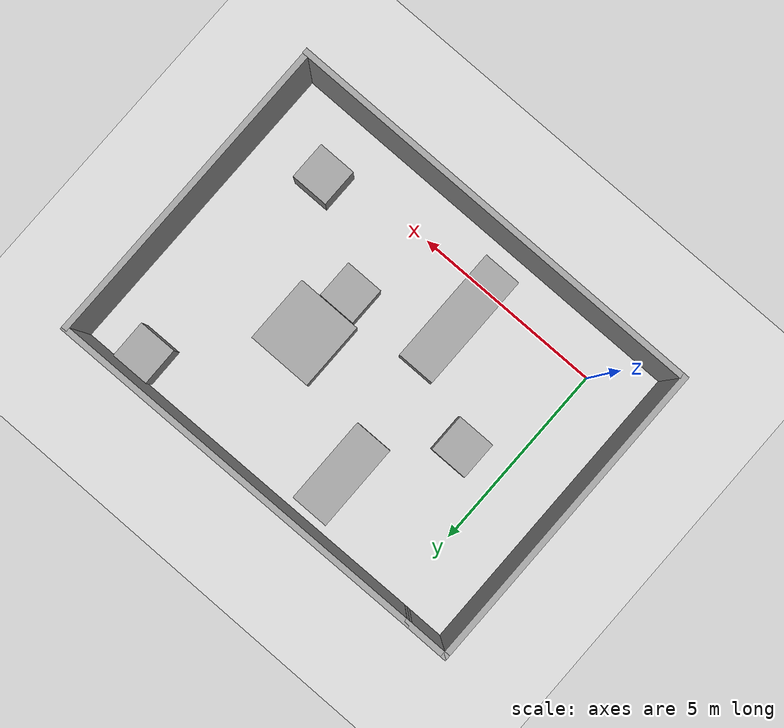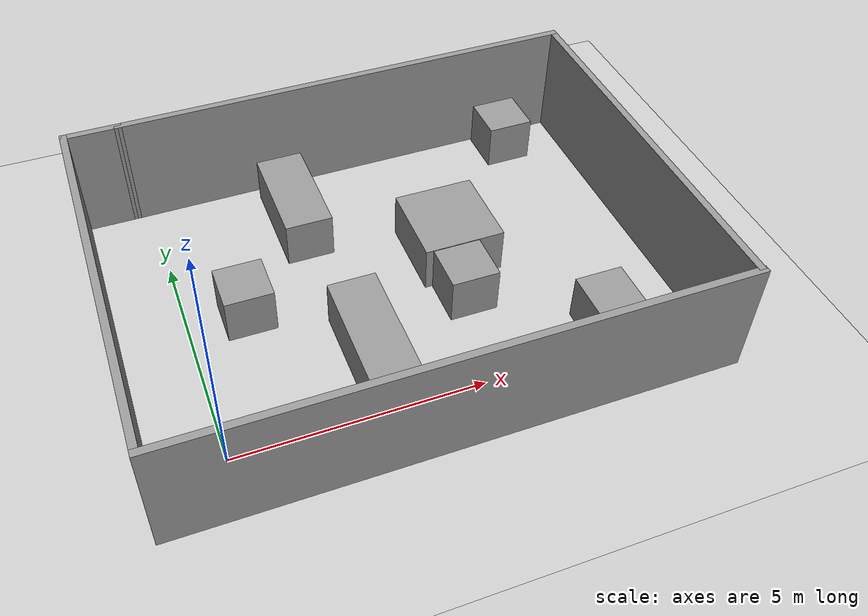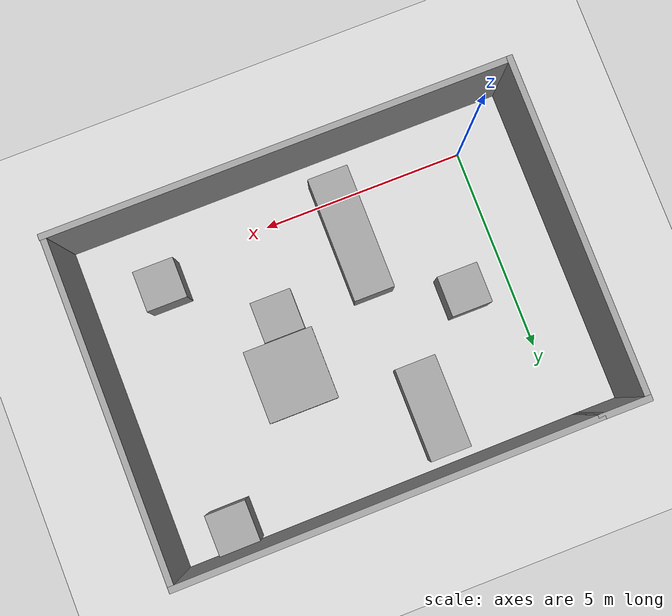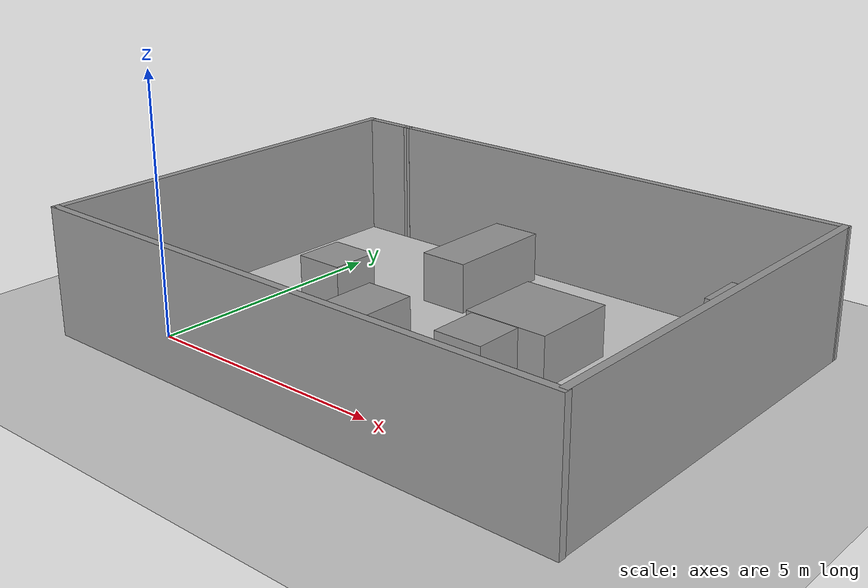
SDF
<sdf version="1.6">
 <world name="default">
  <scene><ambient>0.4 0.4 0.4 1</ambient><background>0.7 0.7 0.7 1</background><shadows>1</shadows></scene>
  <light name="sun" type="directional">
   <pose>0 0 10 0 -0 0</pose>
   <diffuse>0.8 0.8 0.8 1</diffuse>
   <specular>0.1 0.1 0.1 1</specular>
   <attenuation>
    <range>1000</range>
    <constant>0.9</constant>
    <linear>0.01</linear>
    <quadratic>0.001</quadratic>
   </attenuation>
   <direction>-0.5 0.5 -1</direction>
  </light>
  <model name="ground_plane">
   <static>1</static>
   <link name="link">
    <collision name="collision">
     <geometry><plane><normal>0 0 1</normal><size>100 100</size></plane></geometry>
     <surface><friction><ode><mu>100</mu><mu2>50</mu2></ode></friction></surface>
    </collision>
    <visual name="visual">
     <cast_shadows>0</cast_shadows>
     <geometry><plane><normal>0 0 1</normal><size>100 100</size></plane></geometry>
     <material>
      <script><uri>file://media/materials/scripts/gazebo.material</uri><name>Gazebo/Grey</name></script>
     </material>
    </visual>
   </link>
  </model>
  <physics name="default_physics" default="0" type="ode">
   <real_time_update_rate>1000</real_time_update_rate>
   <max_step_size>0.001</max_step_size>
   <real_time_factor>1</real_time_factor>
   <ode>
    <solver>
     <type>quick</type>
     <iters>150</iters>
     <precon_iters>0</precon_iters>
     <sor>1.4</sor>
     <use_dynamic_moi_rescaling>1</use_dynamic_moi_rescaling>
    </solver>
    <constraints>
     <cfm>1e-05</cfm>
     <erp>0.2</erp>
     <contact_max_correcting_vel>2000</contact_max_correcting_vel>
     <contact_surface_layer>0.01</contact_surface_layer>
    </constraints>
   </ode>
  </physics>
  <gravity>0 0 -9.8</gravity>
  <magnetic_field>6e-06 2.3e-05 -4.2e-05</magnetic_field>
  <atmosphere type="adiabatic"/>
  <spherical_coordinates>
   <surface_model>EARTH_WGS84</surface_model>
   <latitude_deg>0</latitude_deg>
   <longitude_deg>0</longitude_deg>
   <elevation>0</elevation>
   <heading_deg>0</heading_deg>
  </spherical_coordinates>
  <model name="turtle3xy+">
   <pose>4.12306 2.94577 0 0 -0 0</pose>
   <link name="Wall_10">
    <collision name="Wall_10_Collision">
     <geometry><box><size>8.25 0.15 2.5</size></box></geometry>
     <pose>0 0 1.25 0 -0 0</pose>
    </collision>
    <visual name="Wall_10_Visual">
     <pose>0 0 1.25 0 -0 0</pose>
     <geometry><box><size>8.25 0.15 2.5</size></box></geometry>
     <material>
      <script><uri>file://media/materials/scripts/gazebo.material</uri><name>Gazebo/Grey</name></script>
      <ambient>1 1 1 1</ambient>
     </material>
    </visual>
    <pose>-5.55 -0.040757 0 0 0 -1.5708</pose>
   </link>
   <link name="Wall_11">
    <collision name="Wall_11_Collision">
     <geometry><box><size>11.25 0.15 2.5</size></box></geometry>
     <pose>0 0 1.25 0 -0 0</pose>
    </collision>
    <visual name="Wall_11_Visual">
     <pose>0 0 1.25 0 -0 0</pose>
     <geometry><box><size>11.25 0.15 2.5</size></box></geometry>
     <material>
      <script><uri>file://media/materials/scripts/gazebo.material</uri><name>Gazebo/Grey</name></script>
      <ambient>1 1 1 1</ambient>
     </material>
    </visual>
    <pose>0 -4.09076 0 0 -0 0</pose>
   </link>
   <link name="Wall_5">
    <collision name="Wall_5_Collision">
     <geometry><box><size>10.135 0.15 2.5</size></box></geometry>
     <pose>0 0 1.25 0 -0 0</pose>
    </collision>
    <visual name="Wall_5_Visual">
     <pose>0 0 1.25 0 -0 0</pose>
     <geometry><box><size>10.135 0.15 2.5</size></box></geometry>
     <material>
      <script><uri>file://media/materials/scripts/gazebo.material</uri><name>Gazebo/Grey</name></script>
      <ambient>1 1 1 1</ambient>
     </material>
    </visual>
    <pose>0.54246 4.0497 0 0 -0 0.008103</pose>
   </link>
   <link name="Wall_6">
    <collision name="Wall_6_Collision">
     <geometry><box><size>8.25 0.15 2.5</size></box></geometry>
     <pose>0 0 1.25 0 -0 0</pose>
    </collision>
    <visual name="Wall_6_Visual">
     <pose>0 0 1.25 0 -0 0</pose>
     <geometry><box><size>8.25 0.15 2.5</size></box></geometry>
     <material>
      <script><uri>file://media/materials/scripts/gazebo.material</uri><name>Gazebo/Grey</name></script>
      <ambient>1 1 1 1</ambient>
     </material>
    </visual>
    <pose>5.53492 0.040154 0 0 0 -1.5708</pose>
   </link>
   <link name="Wall_9">
    <collision name="Wall_9_Collision">
     <geometry><box><size>1.25 0.15 2.5</size></box></geometry>
     <pose>0 0 1.25 0 -0 0</pose>
    </collision>
    <visual name="Wall_9_Visual">
     <pose>0 0 1.25 0 -0 0</pose>
     <geometry><box><size>1.25 0.15 2.5</size></box></geometry>
     <material>
      <script><uri>file://media/materials/scripts/gazebo.material</uri><name>Gazebo/Grey</name></script>
      <ambient>1 1 1 1</ambient>
     </material>
    </visual>
    <pose>-5 4.00924 0 0 -0 3.14159</pose>
   </link>
   <static>1</static>
  </model>
  <model name="unit_box_1">
   <pose>3.2 1 0.5 0 -0 4.4e-05</pose>
   <link name="link">
    <inertial>
     <mass>1</mass>
     <inertia>
      <ixx>0.166667</ixx>
      <ixy>0</ixy>
      <ixz>0</ixz>
      <iyy>0.166667</iyy>
      <iyz>0</iyz>
      <izz>0.166667</izz>
     </inertia>
    </inertial>
    <collision name="collision"><geometry><box><size>1 3.08622 1</size></box></geometry></collision>
    <visual name="visual">
     <geometry><box><size>1 3.08622 1</size></box></geometry>
     <material>
      <script><name>Gazebo/Grey</name><uri>file://media/materials/scripts/gazebo.material</uri></script>
     </material>
    </visual>
   </link>
  </model>
  <model name="unit_box_2">
   <pose>5.7 3.6 0.5 0 -0 0</pose>
   <link name="link">
    <inertial>
     <mass>1</mass>
     <inertia>
      <ixx>0.166667</ixx>
      <ixy>0</ixy>
      <ixz>0</ixz>
      <iyy>0.166667</iyy>
      <iyz>0</iyz>
      <izz>0.166667</izz>
     </inertia>
    </inertial>
    <collision name="collision"><geometry><box><size>1.70142 1.76966 1</size></box></geometry></collision>
    <visual name="visual">
     <geometry><box><size>1.70142 1.76966 1</size></box></geometry>
     <material>
      <script><name>Gazebo/Grey</name><uri>file://media/materials/scripts/gazebo.material</uri></script>
     </material>
    </visual>
   </link>
  </model>
  <model name="unit_box_3">
   <pose>7.8 0.526757 0.5 0 -0 0</pose>
   <link name="link">
    <inertial>
     <mass>1</mass>
     <inertia>
      <ixx>0.166667</ixx>
      <ixy>0</ixy>
      <ixz>0</ixz>
      <iyy>0.166667</iyy>
      <iyz>0</iyz>
      <izz>0.166667</izz>
     </inertia>
    </inertial>
    <collision name="collision"><geometry><box><size>1 1 1</size></box></geometry></collision>
    <visual name="visual">
     <geometry><box><size>1 1 1</size></box></geometry>
     <material>
      <script><name>Gazebo/Grey</name><uri>file://media/materials/scripts/gazebo.material</uri></script>
     </material>
    </visual>
   </link>
  </model>
  <model name="unit_box_4">
   <pose>2.9 5.50002 0.499964 -3.1e-05 -0 0.003589</pose>
   <link name="link">
    <inertial>
     <mass>1</mass>
     <inertia>
      <ixx>0.166667</ixx>
      <ixy>0</ixy>
      <ixz>0</ixz>
      <iyy>0.166667</iyy>
      <iyz>0</iyz>
      <izz>0.166667</izz>
     </inertia>
    </inertial>
    <collision name="collision"><geometry><box><size>1 2.28003 1</size></box></geometry></collision>
    <visual name="visual">
     <geometry><box><size>1 2.28003 1</size></box></geometry>
     <material>
      <script><name>Gazebo/Grey</name><uri>file://media/materials/scripts/gazebo.material</uri></script>
     </material>
    </visual>
   </link>
  </model>
  <model name="unit_box_5">
   <pose>1.2 3.2 0.5 0 -0 0</pose>
   <link name="link">
    <inertial>
     <mass>1</mass>
     <inertia>
      <ixx>0.166667</ixx>
      <ixy>0</ixy>
      <ixz>0</ixz>
      <iyy>0.166667</iyy>
      <iyz>0</iyz>
      <izz>0.166667</izz>
     </inertia>
    </inertial>
    <collision name="collision"><geometry><box><size>1 1 1</size></box></geometry></collision>
    <visual name="visual">
     <geometry><box><size>1 1 1</size></box></geometry>
     <material>
      <script><name>Gazebo/Grey</name><uri>file://media/materials/scripts/gazebo.material</uri></script>
     </material>
    </visual>
   </link>
  </model>
  <model name="unit_box_6">
   <pose>5.5 2.2 0.5 0 -0 0</pose>
   <link name="link">
    <inertial>
     <mass>1</mass>
     <inertia>
      <ixx>0.166667</ixx>
      <ixy>0</ixy>
      <ixz>0</ixz>
      <iyy>0.166667</iyy>
      <iyz>0</iyz>
      <izz>0.166667</izz>
     </inertia>
    </inertial>
    <collision name="collision"><geometry><box><size>1 1 1</size></box></geometry></collision>
    <visual name="visual">
     <geometry><box><size>1 1 1</size></box></geometry>
     <material>
      <script><name>Gazebo/Grey</name><uri>file://media/materials/scripts/gazebo.material</uri></script>
     </material>
    </visual>
   </link>
  </model>
  <model name="unit_box_7">
   <pose>8.2 6.4 0.5 0 -0 0.0081</pose>
   <link name="link">
    <inertial>
     <mass>1</mass>
     <inertia>
      <ixx>0.166667</ixx>
      <ixy>0</ixy>
      <ixz>0</ixz>
      <iyy>0.166667</iyy>
      <iyz>0</iyz>
      <izz>0.166667</izz>
     </inertia>
    </inertial>
    <collision name="collision"><geometry><box><size>1 1 1</size></box></geometry></collision>
    <visual name="visual">
     <geometry><box><size>1 1 1</size></box></geometry>
     <material>
      <script><name>Gazebo/Grey</name><uri>file://media/materials/scripts/gazebo.material</uri></script>
     </material>
    </visual>
   </link>
  </model>
 </world>
</sdf>
